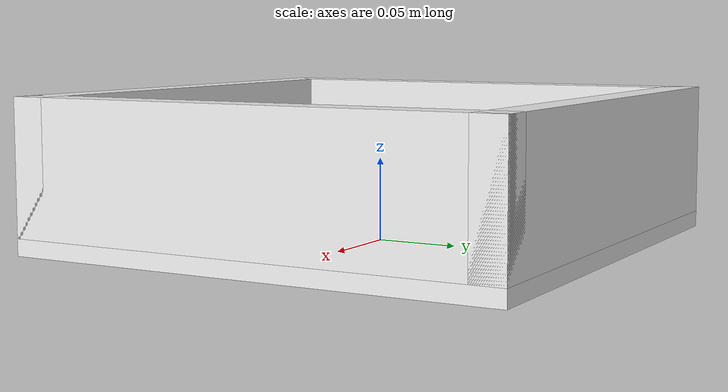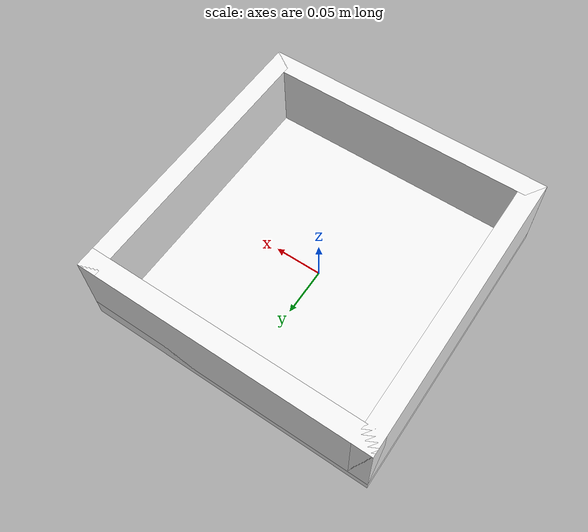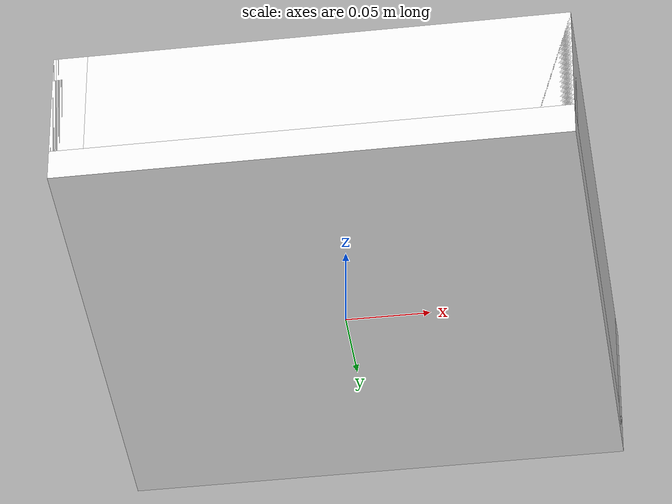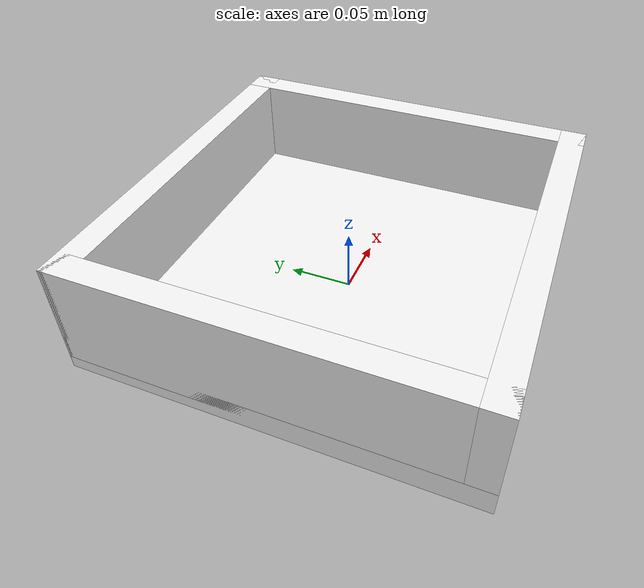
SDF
<?xml version="1.0" ?>
<sdf version="1.7">
  <model name="bowl">
    <static>false</static>
    <link name="link">

      <inertial>
        <mass>0.5</mass>
        <inertia>
          <ixx>0.002</ixx>
          <iyy>0.002</iyy>
          <izz>0.002</izz>
        </inertia>
      </inertial>

      <!-- Base ─────────────────────────────────────────── -->
      <collision name="base_collision">
        <pose>0 0 0.01 0 0 0</pose>
        <geometry><box><size>0.30 0.30 0.02</size></box></geometry>
        <surface><friction><ode><mu>0.8</mu><mu2>0.8</mu2></ode></friction></surface>
      </collision>
      <visual name="base_visual">
        <pose>0 0 0.01 0 0 0</pose>
        <geometry><box><size>0.30 0.30 0.02</size></box></geometry>
        <material><ambient>0.9 0.9 0.9 1</ambient><diffuse>0.95 0.95 0.95 1</diffuse></material>
      </visual>

      <!-- Front wall (+Y face) ─────────────────────────── -->
      <collision name="wall_front_collision">
        <pose>0 0.14 0.05 0 0 0</pose>
        <geometry><box><size>0.30 0.02 0.08</size></box></geometry>
      </collision>
      <visual name="wall_front_visual">
        <pose>0 0.14 0.05 0 0 0</pose>
        <geometry><box><size>0.30 0.02 0.08</size></box></geometry>
        <material><ambient>0.9 0.9 0.9 1</ambient><diffuse>0.95 0.95 0.95 1</diffuse></material>
      </visual>

      <!-- Back wall (-Y face) ──────────────────────────── -->
      <collision name="wall_back_collision">
        <pose>0 -0.14 0.05 0 0 0</pose>
        <geometry><box><size>0.30 0.02 0.08</size></box></geometry>
      </collision>
      <visual name="wall_back_visual">
        <pose>0 -0.14 0.05 0 0 0</pose>
        <geometry><box><size>0.30 0.02 0.08</size></box></geometry>
        <material><ambient>0.9 0.9 0.9 1</ambient><diffuse>0.95 0.95 0.95 1</diffuse></material>
      </visual>

      <!-- Left wall (-X face) ──────────────────────────── -->
      <collision name="wall_left_collision">
        <pose>-0.14 0 0.05 0 0 0</pose>
        <geometry><box><size>0.02 0.30 0.08</size></box></geometry>
      </collision>
      <visual name="wall_left_visual">
        <pose>-0.14 0 0.05 0 0 0</pose>
        <geometry><box><size>0.02 0.30 0.08</size></box></geometry>
        <material><ambient>0.9 0.9 0.9 1</ambient><diffuse>0.95 0.95 0.95 1</diffuse></material>
      </visual>

      <!-- Right wall (+X face) ─────────────────────────── -->
      <collision name="wall_right_collision">
        <pose>0.14 0 0.05 0 0 0</pose>
        <geometry><box><size>0.02 0.30 0.08</size></box></geometry>
      </collision>
      <visual name="wall_right_visual">
        <pose>0.14 0 0.05 0 0 0</pose>
        <geometry><box><size>0.02 0.30 0.08</size></box></geometry>
        <material><ambient>0.9 0.9 0.9 1</ambient><diffuse>0.95 0.95 0.95 1</diffuse></material>
      </visual>

    </link>
  </model>
</sdf>
